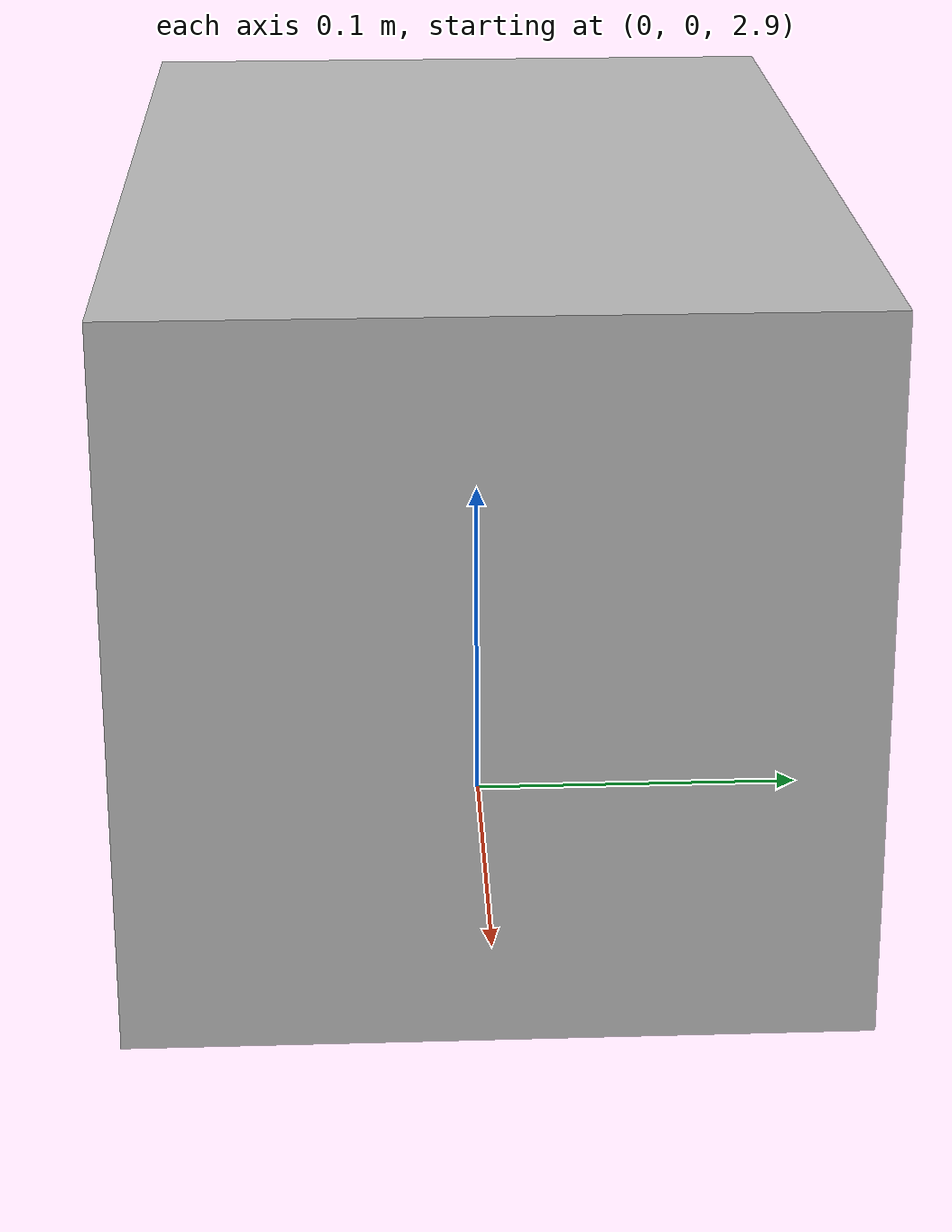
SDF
<?xml version="1.0"?>
<sdf version="1.7">
  <model name="block">
    <link name="block_link">
      <pose>0 0 3.0 0 0 0</pose>
      <inertial>
        <mass>1.0</mass>
        <inertia>
          <ixx>0.05</ixx>
          <ixy>0</ixy>
          <ixz>0</ixz>
          <iyy>0.05</iyy>
          <iyz>0</iyz>
          <izz>0.05</izz>
        </inertia>
      </inertial>
      <visual name="visual">
        <geometry>
          <box>
            <size>0.3 0.2 0.2</size>
          </box>
        </geometry>
      </visual>
      <collision name="collision">
        <geometry>
          <box>
            <size>0.3 0.2 0.2</size>
          </box>
        </geometry>
      </collision>
    </link>
    <frame name="block_center">
      <pose relative_to="block_link">0 0 0.0 0 0 0</pose>
    </frame>
  </model>
</sdf>
